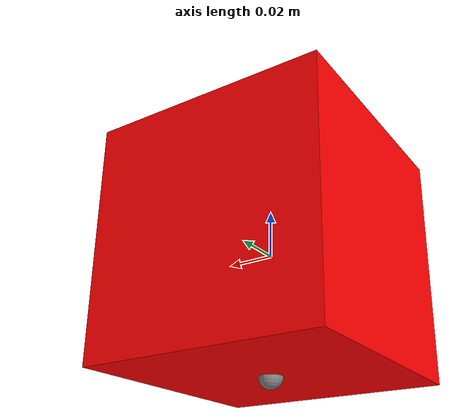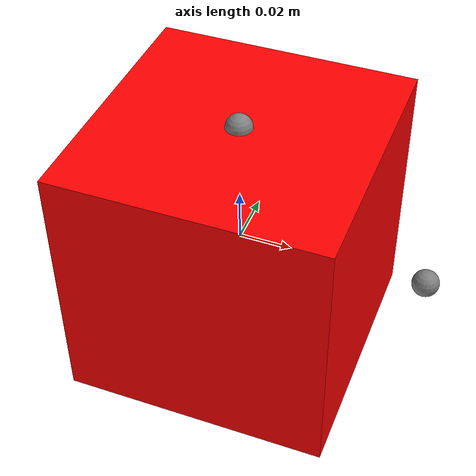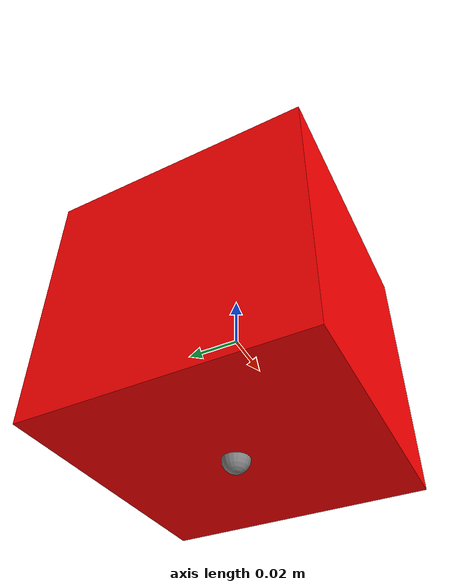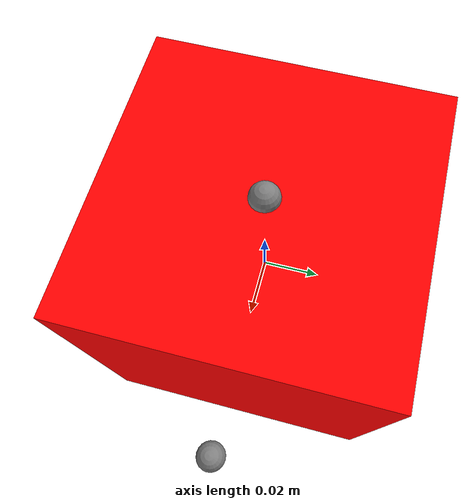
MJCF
<!-- sample of a general object defined in mujoco -->
<mujoco model="box">
	<worldbody>
		<body>
			<geom pos="0 0 0" size="0.05 0.05 0.05" type="box" rgba="1 0 0 1"/>
			<site pos="0 0 -0.05" name="bottom_site"/>
			<site pos="0 0 0.05" name="top_site"/>
			<site pos="0.071 0 0" name="horizontal_radius_site"/>
			<site pos="0 0 0" name="main_site"/>
		</body>
	</worldbody>
</mujoco>
